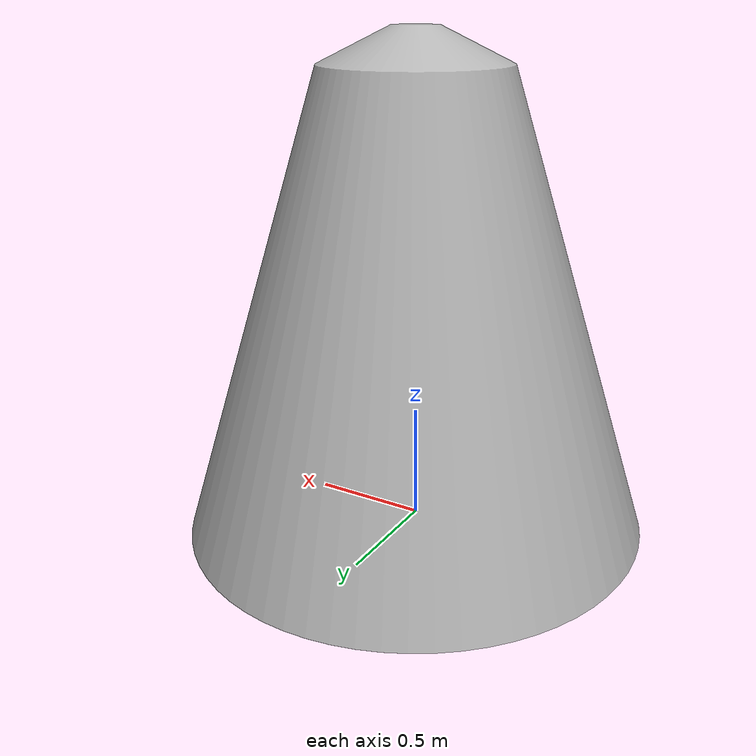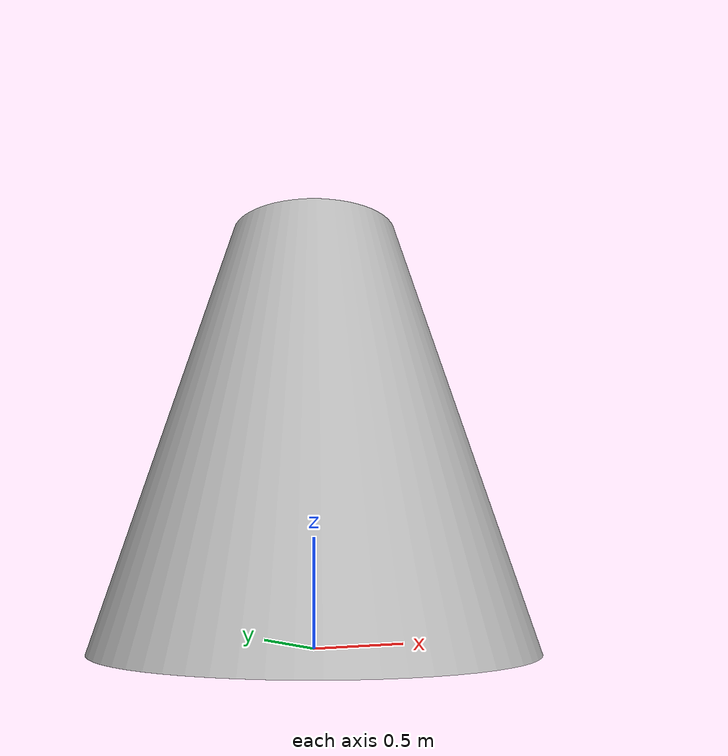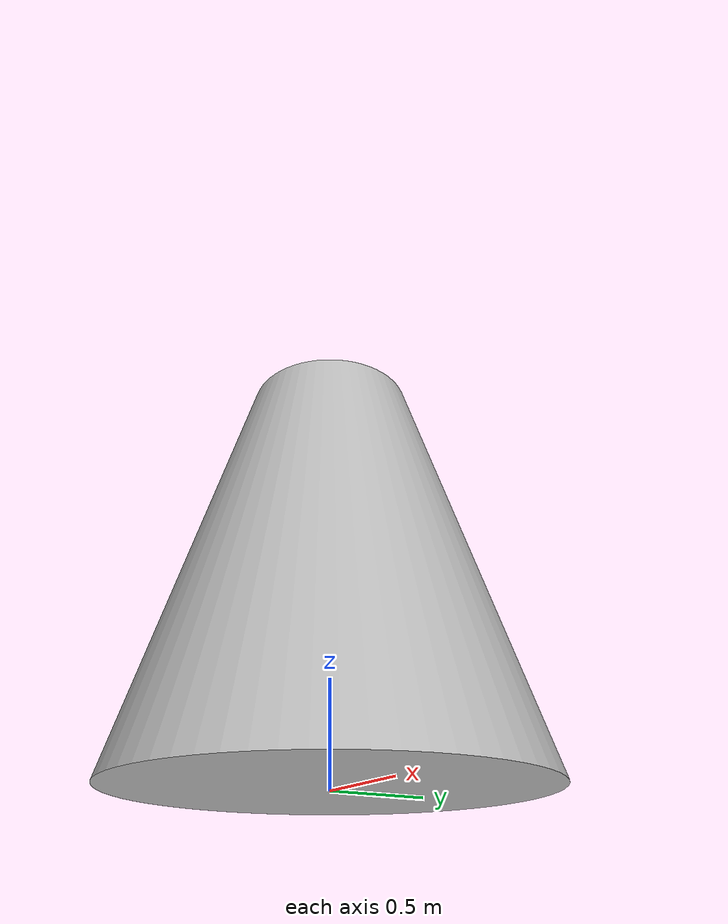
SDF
<?xml version="1.0" ?>
<sdf version="1.5">
  <model name="basic_cone">
    <static>true</static>
    <link name="link">
      <visual name="visual">
        <geometry>
          <mesh>
            <uri>model://basic_cone/meshes/basic_cone.dae</uri>
          </mesh>
        </geometry>
      </visual>
      <collision name="collision">
        <geometry>
          <mesh>
            <uri>model://basic_cone/meshes/basic_cone.dae</uri>
          </mesh>
        </geometry>
      </collision>
    </link>
  </model>
</sdf>
